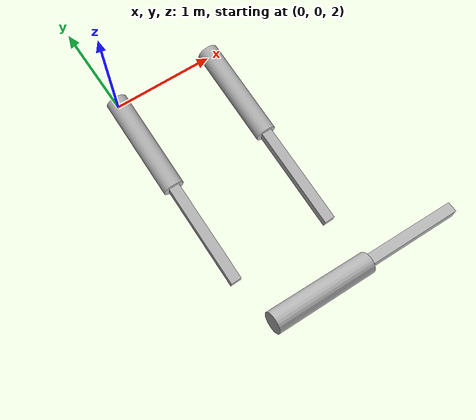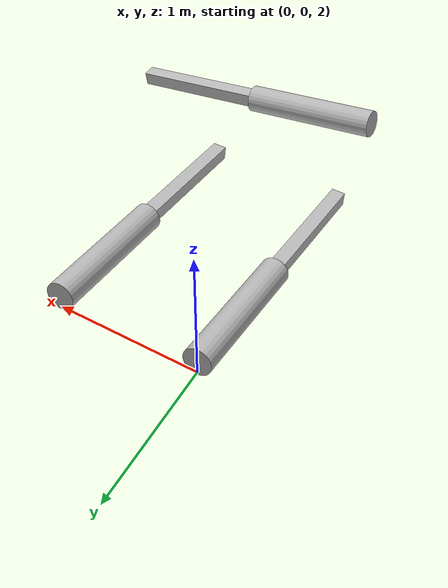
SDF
<sdf version="1.4">
    <world name="default">
        <scene>
            <ambient>0.500000 0.500000 0.500000 1.000000</ambient>
            <background>0.500000 0.500000 0.500000 1.000000</background>
            <shadows>0</shadows>
        </scene>
        <light name="sun" type="directional">
            <pose>0.000000 0.000000 100.000000 0.000000 -0.000000 0.000000</pose>
            <diffuse>1.000000 1.000000 1.000000 1.000000</diffuse>
            <specular>0.100000 0.100000 0.100000 1.000000</specular>
            <attenuation>
                <range>1000.000000</range>
                <linear>0.010000</linear>
                <constant>0.900000</constant>
                <quadratic>0.000000</quadratic>
            </attenuation>
            <direction>-1.000000 0.000000 -1.000000</direction>
            <cast_shadows>1</cast_shadows>
        </light>
        <physics type="ode">
            <gravity>0.000000 0.000000 -9.810000</gravity>
            <ode>
                <solver>
                    <type>quick</type>
                    <dt>0.001000</dt>
                    <iters>100</iters>
                    <precon_iters>0</precon_iters>
                    <sor>1.300000</sor>
                </solver>
                <constraints>
                    <cfm>0.000000</cfm>
                    <erp>1.000000</erp>
                    <contact_max_correcting_vel>0.000000</contact_max_correcting_vel>
                    <contact_surface_layer>0.000000</contact_surface_layer>
                </constraints>
            </ode>
            <update_rate>0.000000</update_rate>
        </physics>
        <model name="model_1">
            <pose>0.000000 0.000000 2.100000 -1.415927 -0.000000 0.000000</pose>
            <link name="link_1">
                <pose>0.000000 0.000000 0.000000 0.000000 -0.000000 0.000000</pose>
                <inertial>
                    <pose>0.000000 0.000000 -0.500000 0.000000 -0.000000 0.000000</pose>
                    <inertia>
                        <ixx>1.000000</ixx>
                        <ixy>0.000000</ixy>
                        <ixz>0.000000</ixz>
                        <iyy>1.000000</iyy>
                        <iyz>0.000000</iyz>
                        <izz>1.000000</izz>
                    </inertia>
                    <mass>10.000000</mass>
                </inertial>
                <visual name="visual_cylinder">
                    <pose>0.000000 0.000000 -0.500000 0.000000 -0.000000 0.000000</pose>
                    <geometry>
                        <cylinder>
                            <radius>0.100000</radius>
                            <length>1.000000</length>
                        </cylinder>
                    </geometry>
                    <material>
                        <script>Gazebo/Green</script>
                    </material>
                    <cast_shadows>1</cast_shadows>
                    <laser_retro>100.000000</laser_retro>
                    <transparency>0.000000</transparency>
                </visual>
                <collision name="collision_cylinder">
                    <pose>0.000000 0.000000 -0.500000 0.000000 -0.000000 0.000000</pose>
                    <max_contacts>250</max_contacts>
                    <geometry>
                        <cylinder>
                            <radius>0.100000</radius>
                            <length>1.000000</length>
                        </cylinder>
                    </geometry>
                    <surface>
                        <friction>
                            <ode>
                                <mu>0.500000</mu>
                                <mu2>0.200000</mu2>
                                <fdir1>1.000000 0.000000 0.000000</fdir1>
                                <slip1>0.000000</slip1>
                                <slip2>0.000000</slip2>
                            </ode>
                        </friction>
                        <bounce>
                            <restitution_coefficient>0.000000</restitution_coefficient>
                            <threshold>1000000.000000</threshold>
                        </bounce>
                        <contact>
                            <ode>
                                <soft_cfm>0.000000</soft_cfm>
                                <soft_erp>0.200000</soft_erp>
                                <kp>1000000000000000.000000</kp>
                                <kd>10000000000000.000000</kd>
                                <max_vel>100.000000</max_vel>
                                <min_depth>0.000100</min_depth>
                            </ode>
                        </contact>
                    </surface>
                    <laser_retro>100.000000</laser_retro>
                </collision>
                <gravity>1</gravity>
                <self_collide>1</self_collide>
                <kinematic>0</kinematic>
            </link>
            <link name="link_2">
                <pose>0.000000 0.000000 -1.000000 0.000000 -0.000000 0.000000</pose>
                <inertial>
                    <pose>0.000000 0.000000 -0.500000 0.000000 -0.000000 0.000000</pose>
                    <inertia>
                        <ixx>1.000000</ixx>
                        <ixy>0.000000</ixy>
                        <ixz>0.000000</ixz>
                        <iyy>1.000000</iyy>
                        <iyz>0.000000</iyz>
                        <izz>1.000000</izz>
                    </inertia>
                    <mass>10.000000</mass>
                </inertial>
                <visual name="visual_box">
                    <pose>0.000000 0.000000 -0.500000 0.000000 -0.000000 0.000000</pose>
                    <geometry>
                        <box>
                            <size>0.100000 0.100000 1.000000</size>
                        </box>
                    </geometry>
                    <material>
                        <script>Gazebo/Red</script>
                    </material>
                    <cast_shadows>1</cast_shadows>
                    <laser_retro>100.000000</laser_retro>
                    <transparency>0.000000</transparency>
                </visual>
                <collision name="collision_box">
                    <pose>0.000000 0.000000 -0.500000 0.000000 -0.000000 0.000000</pose>
                    <max_contacts>250</max_contacts>
                    <geometry>
                        <box>
                            <size>0.100000 0.100000 1.000000</size>
                        </box>
                    </geometry>
                    <surface>
                        <friction>
                            <ode>
                                <mu>0.500000</mu>
                                <mu2>0.200000</mu2>
                                <fdir1>1.000000 0.000000 0.000000</fdir1>
                                <slip1>0.000000</slip1>
                                <slip2>0.000000</slip2>
                            </ode>
                        </friction>
                        <bounce>
                            <restitution_coefficient>0.000000</restitution_coefficient>
                            <threshold>1000000.000000</threshold>
                        </bounce>
                        <contact>
                            <ode>
                                <soft_cfm>0.000000</soft_cfm>
                                <soft_erp>0.200000</soft_erp>
                                <kp>1000000000000000.000000</kp>
                                <kd>10000000000000.000000</kd>
                                <max_vel>100.000000</max_vel>
                                <min_depth>0.000100</min_depth>
                            </ode>
                        </contact>
                    </surface>
                    <laser_retro>100.000000</laser_retro>
                </collision>
                <gravity>1</gravity>
                <self_collide>0</self_collide>
                <kinematic>0</kinematic>
            </link>
            <joint name="joint_0" type="revolute">
                <parent>world</parent>
                <child>link_1</child>
                <pose>0.000000 0.000000 0.000000 0.000000 -0.000000 0.000000</pose>
                <axis>
                    <limit>
                        <lower>-100.000000</lower>
                        <upper>100.000000</upper>
                        <effort>1000.000000</effort>
                        <velocity>1000.000000</velocity>
                    </limit>
                    <dynamics>
                        <damping>0.000000</damping>
                        <friction>0.000000</friction>
                    </dynamics>
                    <xyz>1.000000 0.000000 0.000000</xyz>
                </axis>
                <physics>
                    <ode>
                        <cfm>0.200000</cfm>
                        <bounce>0.000000</bounce>
                        <max_force>1000.000000</max_force>
                        <velocity>0.000000</velocity>
                        <fudge_factor>0.000000</fudge_factor>
                        <limit>
                           <cfm>0</cfm>
                           <erp>0.2</erp>
                        </limit>
                        <suspension>
                           <cfm>0</cfm>
                           <erp>0.2</erp>
                        </suspension>
                    </ode>
                </physics>
            </joint>
            <joint name="joint_1" type="revolute">
                <parent>link_1</parent>
                <child>link_2</child>
                <pose>0.000000 0.000000 0.000000 0.000000 -0.000000 0.000000</pose>
                <axis>
                    <limit>
                        <lower>-100.000000</lower>
                        <upper>100.000000</upper>
                        <effort>1000.000000</effort>
                        <velocity>1000.000000</velocity>
                    </limit>
                    <dynamics>
                        <damping>0.000000</damping>
                        <friction>0.000000</friction>
                    </dynamics>
                    <xyz>1.000000 0.000000 0.000000</xyz>
                </axis>
                <physics>
                    <ode>
                        <cfm>0.200000</cfm>
                        <bounce>0.000000</bounce>
                        <max_force>1000.000000</max_force>
                        <velocity>0.000000</velocity>
                        <fudge_factor>0.000000</fudge_factor>
                        <limit>
                           <cfm>0</cfm>
                           <erp>0.2</erp>
                        </limit>
                        <suspension>
                           <cfm>0</cfm>
                           <erp>0.2</erp>
                        </suspension>
                    </ode>
                </physics>
            </joint>
            <static>0</static>
        </model>
        <model name="model_2">
            <pose>1.000000 0.000000 2.100000 -1.415927 -0.000000 0.000000</pose>
            <link name="link_1">
                <pose>0.000000 0.000000 0.000000 0.000000 -0.000000 0.000000</pose>
                <inertial>
                    <pose>0.000000 0.000000 -0.500000 0.000000 -0.000000 0.000000</pose>
                    <inertia>
                        <ixx>1.000000</ixx>
                        <ixy>0.000000</ixy>
                        <ixz>0.000000</ixz>
                        <iyy>1.000000</iyy>
                        <iyz>0.000000</iyz>
                        <izz>1.000000</izz>
                    </inertia>
                    <mass>10.000000</mass>
                </inertial>
                <visual name="visual_cylinder">
                    <pose>0.000000 0.000000 -0.500000 0.000000 -0.000000 0.000000</pose>
                    <geometry>
                        <cylinder>
                            <radius>0.100000</radius>
                            <length>1.000000</length>
                        </cylinder>
                    </geometry>
                    <material>
                        <script>Gazebo/Green</script>
                    </material>
                    <cast_shadows>1</cast_shadows>
                    <laser_retro>100.000000</laser_retro>
                    <transparency>0.000000</transparency>
                </visual>
                <collision name="collision_cylinder">
                    <pose>0.000000 0.000000 -0.500000 0.000000 -0.000000 0.000000</pose>
                    <max_contacts>250</max_contacts>
                    <geometry>
                        <cylinder>
                            <radius>0.100000</radius>
                            <length>1.000000</length>
                        </cylinder>
                    </geometry>
                    <surface>
                        <friction>
                            <ode>
                                <mu>0.500000</mu>
                                <mu2>0.200000</mu2>
                                <fdir1>1.000000 0.000000 0.000000</fdir1>
                                <slip1>0.000000</slip1>
                                <slip2>0.000000</slip2>
                            </ode>
                        </friction>
                        <bounce>
                            <restitution_coefficient>0.000000</restitution_coefficient>
                            <threshold>1000000.000000</threshold>
                        </bounce>
                        <contact>
                            <ode>
                                <soft_cfm>0.000000</soft_cfm>
                                <soft_erp>0.200000</soft_erp>
                                <kp>1000000000000000.000000</kp>
                                <kd>10000000000000.000000</kd>
                                <max_vel>100.000000</max_vel>
                                <min_depth>0.000100</min_depth>
                            </ode>
                        </contact>
                    </surface>
                    <laser_retro>100.000000</laser_retro>
                </collision>
                <gravity>1</gravity>
                <self_collide>1</self_collide>
                <kinematic>0</kinematic>
            </link>
            <link name="link_2">
                <pose>0.000000 0.000000 -1.000000 0.000000 -0.000000 0.000000</pose>
                <inertial>
                    <pose>0.000000 0.000000 -0.500000 0.000000 -0.000000 0.000000</pose>
                    <inertia>
                        <ixx>1.000000</ixx>
                        <ixy>0.000000</ixy>
                        <ixz>0.000000</ixz>
                        <iyy>1.000000</iyy>
                        <iyz>0.000000</iyz>
                        <izz>1.000000</izz>
                    </inertia>
                    <mass>10.000000</mass>
                </inertial>
                <visual name="visual_box">
                    <pose>0.000000 0.000000 -0.500000 0.000000 -0.000000 0.000000</pose>
                    <geometry>
                        <box>
                            <size>0.100000 0.100000 1.000000</size>
                        </box>
                    </geometry>
                    <material>
                        <script>Gazebo/Red</script>
                    </material>
                    <cast_shadows>1</cast_shadows>
                    <laser_retro>100.000000</laser_retro>
                    <transparency>0.000000</transparency>
                </visual>
                <collision name="collision_box">
                    <pose>0.000000 0.000000 -0.500000 0.000000 -0.000000 0.000000</pose>
                    <max_contacts>250</max_contacts>
                    <geometry>
                        <box>
                            <size>0.100000 0.100000 1.000000</size>
                        </box>
                    </geometry>
                    <surface>
                        <friction>
                            <ode>
                                <mu>0.500000</mu>
                                <mu2>0.200000</mu2>
                                <fdir1>1.000000 0.000000 0.000000</fdir1>
                                <slip1>0.000000</slip1>
                                <slip2>0.000000</slip2>
                            </ode>
                        </friction>
                        <bounce>
                            <restitution_coefficient>0.000000</restitution_coefficient>
                            <threshold>1000000.000000</threshold>
                        </bounce>
                        <contact>
                            <ode>
                                <soft_cfm>0.000000</soft_cfm>
                                <soft_erp>0.200000</soft_erp>
                                <kp>1000000000000000.000000</kp>
                                <kd>10000000000000.000000</kd>
                                <max_vel>100.000000</max_vel>
                                <min_depth>0.000100</min_depth>
                            </ode>
                        </contact>
                    </surface>
                    <laser_retro>100.000000</laser_retro>
                </collision>
                <gravity>1</gravity>
                <self_collide>0</self_collide>
                <kinematic>0</kinematic>
            </link>
            <joint name="joint_0" type="revolute">
                <parent>world</parent>
                <child>link_1</child>
                <pose>0.000000 0.000000 0.000000 0.000000 -0.000000 0.000000</pose>
                <axis>
                    <limit>
                        <lower>-100.000000</lower>
                        <upper>100.000000</upper>
                        <effort>1000.000000</effort>
                        <velocity>1000.000000</velocity>
                    </limit>
                    <dynamics>
                        <damping>0.000000</damping>
                        <friction>0.000000</friction>
                    </dynamics>
                    <xyz>1.000000 0.000000 0.000000</xyz>
                </axis>
                <physics>
                    <ode>
                        <cfm>0.200000</cfm>
                        <bounce>0.000000</bounce>
                        <max_force>1000.000000</max_force>
                        <velocity>0.000000</velocity>
                        <fudge_factor>0.000000</fudge_factor>
                        <limit>
                           <cfm>0</cfm>
                           <erp>0.2</erp>
                        </limit>
                        <suspension>
                           <cfm>0</cfm>
                           <erp>0.2</erp>
                        </suspension>
                    </ode>
                </physics>
            </joint>
            <joint name="joint_1" type="revolute">
                <parent>link_1</parent>
                <child>link_2</child>
                <pose>0.000000 0.000000 0.000000 0.000000 -0.000000 0.000000</pose>
                <axis>
                    <limit>
                        <lower>-100.000000</lower>
                        <upper>100.000000</upper>
                        <effort>1000.000000</effort>
                        <velocity>1000.000000</velocity>
                    </limit>
                    <dynamics>
                        <damping>0.000000</damping>
                        <friction>0.000000</friction>
                    </dynamics>
                    <xyz>1.000000 0.000000 0.000000</xyz>
                </axis>
                <physics>
                    <ode>
                        <cfm>0.200000</cfm>
                        <bounce>0.000000</bounce>
                        <max_force>1000.000000</max_force>
                        <velocity>0.000000</velocity>
                        <fudge_factor>0.000000</fudge_factor>
                        <limit>
                           <cfm>0</cfm>
                           <erp>0.2</erp>
                        </limit>
                        <suspension>
                           <cfm>0</cfm>
                           <erp>0.2</erp>
                        </suspension>
                    </ode>
                </physics>
            </joint>
            <static>0</static>
        </model>
        <model name="model_3">
            <pose>0.000000 -2.500000 2.100000 0.000000 -1.415927 0.000000</pose>
            <link name="link_1">
                <pose>0.000000 0.000000 0.000000 0.000000 -0.000000 0.000000</pose>
                <inertial>
                    <pose>0.000000 0.000000 -0.500000 0.000000 -0.000000 0.000000</pose>
                    <inertia>
                        <ixx>1.000000</ixx>
                        <ixy>0.000000</ixy>
                        <ixz>0.000000</ixz>
                        <iyy>1.000000</iyy>
                        <iyz>0.000000</iyz>
                        <izz>1.000000</izz>
                    </inertia>
                    <mass>10.000000</mass>
                </inertial>
                <visual name="visual_cylinder">
                    <pose>0.000000 0.000000 -0.500000 0.000000 -0.000000 0.000000</pose>
                    <geometry>
                        <cylinder>
                            <radius>0.100000</radius>
                            <length>1.000000</length>
                        </cylinder>
                    </geometry>
                    <material>
                        <script>Gazebo/Green</script>
                    </material>
                    <cast_shadows>1</cast_shadows>
                    <laser_retro>100.000000</laser_retro>
                    <transparency>0.000000</transparency>
                </visual>
                <collision name="collision_cylinder">
                    <pose>0.000000 0.000000 -0.500000 0.000000 -0.000000 0.000000</pose>
                    <max_contacts>250</max_contacts>
                    <geometry>
                        <cylinder>
                            <radius>0.100000</radius>
                            <length>1.000000</length>
                        </cylinder>
                    </geometry>
                    <surface>
                        <friction>
                            <ode>
                                <mu>0.500000</mu>
                                <mu2>0.200000</mu2>
                                <fdir1>1.000000 0.000000 0.000000</fdir1>
                                <slip1>0.000000</slip1>
                                <slip2>0.000000</slip2>
                            </ode>
                        </friction>
                        <bounce>
                            <restitution_coefficient>0.000000</restitution_coefficient>
                            <threshold>1000000.000000</threshold>
                        </bounce>
                        <contact>
                            <ode>
                                <soft_cfm>0.000000</soft_cfm>
                                <soft_erp>0.200000</soft_erp>
                                <kp>1000000000000000.000000</kp>
                                <kd>10000000000000.000000</kd>
                                <max_vel>100.000000</max_vel>
                                <min_depth>0.000100</min_depth>
                            </ode>
                        </contact>
                    </surface>
                    <laser_retro>100.000000</laser_retro>
                </collision>
                <gravity>1</gravity>
                <self_collide>1</self_collide>
                <kinematic>0</kinematic>
            </link>
            <link name="link_2">
                <pose>0.000000 0.000000 -1.000000 0.000000 -0.000000 0.000000</pose>
                <inertial>
                    <pose>0.000000 0.000000 -0.500000 0.000000 -0.000000 0.000000</pose>
                    <inertia>
                        <ixx>1.000000</ixx>
                        <ixy>0.000000</ixy>
                        <ixz>0.000000</ixz>
                        <iyy>1.000000</iyy>
                        <iyz>0.000000</iyz>
                        <izz>1.000000</izz>
                    </inertia>
                    <mass>10.000000</mass>
                </inertial>
                <visual name="visual_box">
                    <pose>0.000000 0.000000 -0.500000 0.000000 -0.000000 0.000000</pose>
                    <geometry>
                        <box>
                            <size>0.100000 0.100000 1.000000</size>
                        </box>
                    </geometry>
                    <material>
                        <script>Gazebo/Red</script>
                    </material>
                    <cast_shadows>1</cast_shadows>
                    <laser_retro>100.000000</laser_retro>
                    <transparency>0.000000</transparency>
                </visual>
                <collision name="collision_box">
                    <pose>0.000000 0.000000 -0.500000 0.000000 -0.000000 0.000000</pose>
                    <max_contacts>250</max_contacts>
                    <geometry>
                        <box>
                            <size>0.100000 0.100000 1.000000</size>
                        </box>
                    </geometry>
                    <surface>
                        <friction>
                            <ode>
                                <mu>0.500000</mu>
                                <mu2>0.200000</mu2>
                                <fdir1>1.000000 0.000000 0.000000</fdir1>
                                <slip1>0.000000</slip1>
                                <slip2>0.000000</slip2>
                            </ode>
                        </friction>
                        <bounce>
                            <restitution_coefficient>0.000000</restitution_coefficient>
                            <threshold>1000000.000000</threshold>
                        </bounce>
                        <contact>
                            <ode>
                                <soft_cfm>0.000000</soft_cfm>
                                <soft_erp>0.200000</soft_erp>
                                <kp>1000000000000000.000000</kp>
                                <kd>10000000000000.000000</kd>
                                <max_vel>100.000000</max_vel>
                                <min_depth>0.000100</min_depth>
                            </ode>
                        </contact>
                    </surface>
                    <laser_retro>100.000000</laser_retro>
                </collision>
                <gravity>1</gravity>
                <self_collide>0</self_collide>
                <kinematic>0</kinematic>
            </link>
            <joint name="joint_0" type="revolute">
                <parent>world</parent>
                <child>link_1</child>
                <pose>0.000000 0.000000 0.000000 0.000000 -0.000000 0.000000</pose>
                <axis>
                    <limit>
                        <lower>-100.000000</lower>
                        <upper>100.000000</upper>
                        <effort>1000.000000</effort>
                        <velocity>1000.000000</velocity>
                    </limit>
                    <dynamics>
                        <damping>0.000000</damping>
                        <friction>0.000000</friction>
                    </dynamics>
                    <xyz>0.000000 1.000000 0.000000</xyz>
                </axis>
                <physics>
                    <ode>
                        <cfm>0.200000</cfm>
                        <bounce>0.000000</bounce>
                        <max_force>1000.000000</max_force>
                        <velocity>0.000000</velocity>
                        <fudge_factor>0.000000</fudge_factor>
                        <limit>
                           <cfm>0</cfm>
                           <erp>0.2</erp>
                        </limit>
                        <suspension>
                           <cfm>0</cfm>
                           <erp>0.2</erp>
                        </suspension>
                    </ode>
                </physics>
            </joint>
            <joint name="joint_1" type="revolute">
                <parent>link_1</parent>
                <child>link_2</child>
                <pose>0.000000 0.000000 0.000000 0.000000 -0.000000 0.000000</pose>
                <axis>
                    <limit>
                        <lower>-100.000000</lower>
                        <upper>100.000000</upper>
                        <effort>1000.000000</effort>
                        <velocity>1000.000000</velocity>
                    </limit>
                    <dynamics>
                        <damping>0.000000</damping>
                        <friction>0.000000</friction>
                    </dynamics>
                    <xyz>0.000000 1.000000 0.000000</xyz>
                </axis>
                <physics>
                    <ode>
                        <cfm>0.200000</cfm>
                        <bounce>0.000000</bounce>
                        <max_force>1000.000000</max_force>
                        <velocity>0.000000</velocity>
                        <fudge_factor>0.000000</fudge_factor>
                        <limit>
                           <cfm>0</cfm>
                           <erp>0.2</erp>
                        </limit>
                        <suspension>
                           <cfm>0</cfm>
                           <erp>0.2</erp>
                        </suspension>
                    </ode>
                </physics>
            </joint>
            <static>0</static>
        </model>
    </world>
</sdf>
